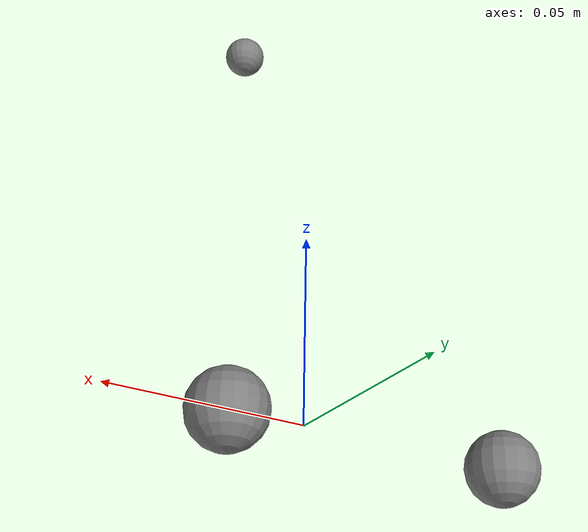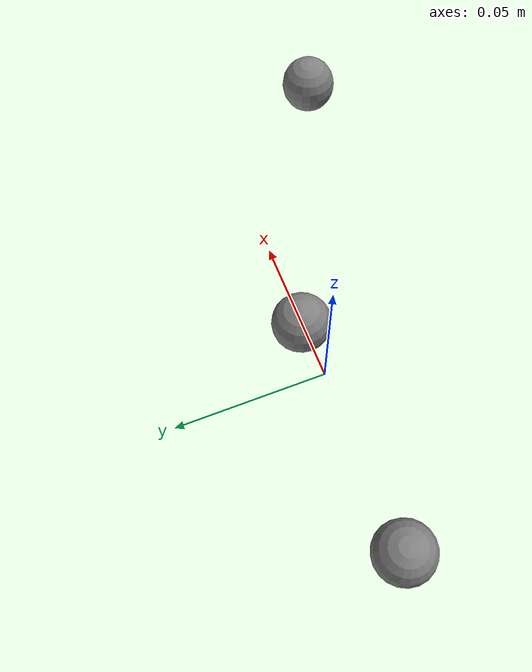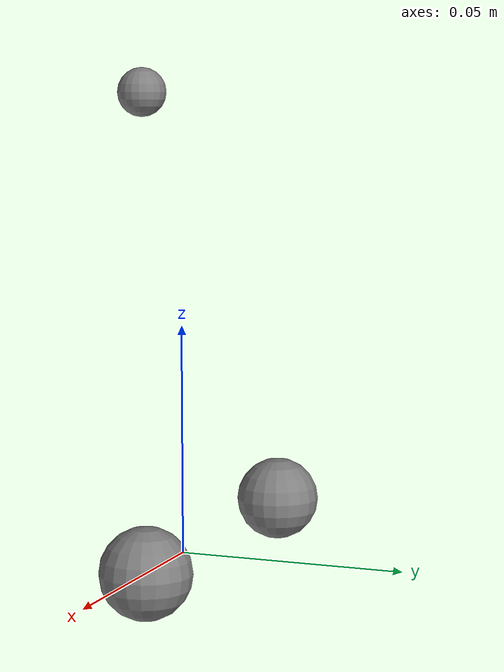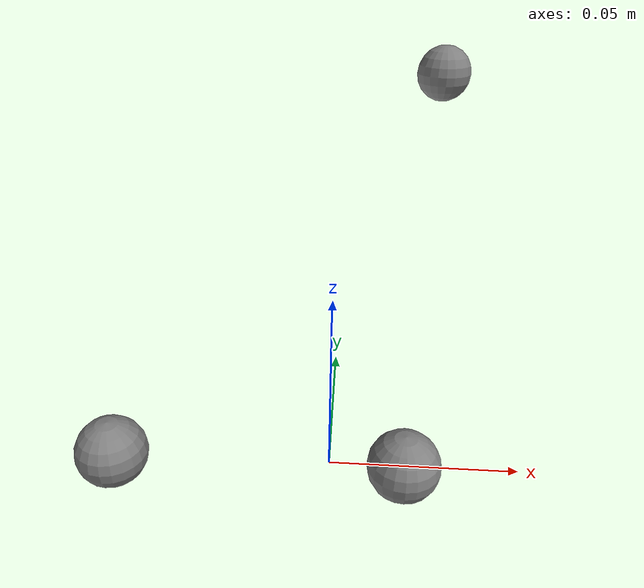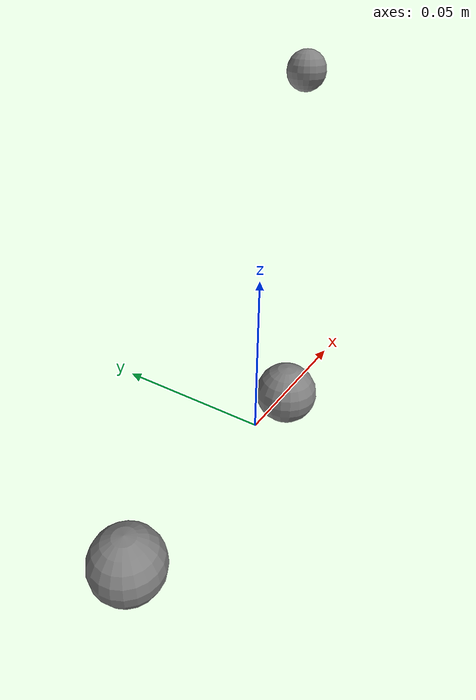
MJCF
<mujoco model="plugins">
  <compiler autolimits="true"/>
  <extension>
    <plugin plugin="mujoco.pid">
      <instance name="pid1">
        <config key="kp" value="4.0"/>
      </instance>
      <instance name="pid2">
        <config key="kp" value="4.0"/>
        <config key="kd" value="0.4"/>
      </instance>
    </plugin>
    <plugin plugin="mujoco.sensor.touch_grid"/>
  </extension>
  <worldbody>
    <body pos="-0.06 0 0">
      <joint name="j1" type="slide" axis="0 0 1"/>
      <geom type="sphere" size="0.01"/>
    </body>
    <body pos="0.02 0 0">
      <joint name="j2" type="slide" axis="0 0 1"/>
      <geom type="sphere" size="0.01"/>
      <site name="touch" pos="0 0 .1"/>
    </body>
  </worldbody>
  <actuator>
    <plugin joint="j1" plugin="mujoco.pid" instance="pid1" ctrlrange="0 0.15"/>
    <plugin joint="j2" plugin="mujoco.pid" instance="pid2" ctrlrange="0 0.15"/>
  </actuator>
  <sensor>
    <plugin name="touch" plugin="mujoco.sensor.touch_grid" objtype="site" objname="touch">
      <config key="size" value="7 7"/>
      <config key="fov" value="45 45"/>
      <config key="gamma" value="0"/>
      <config key="nchannel" value="3"/>
    </plugin>
  </sensor>
</mujoco>
